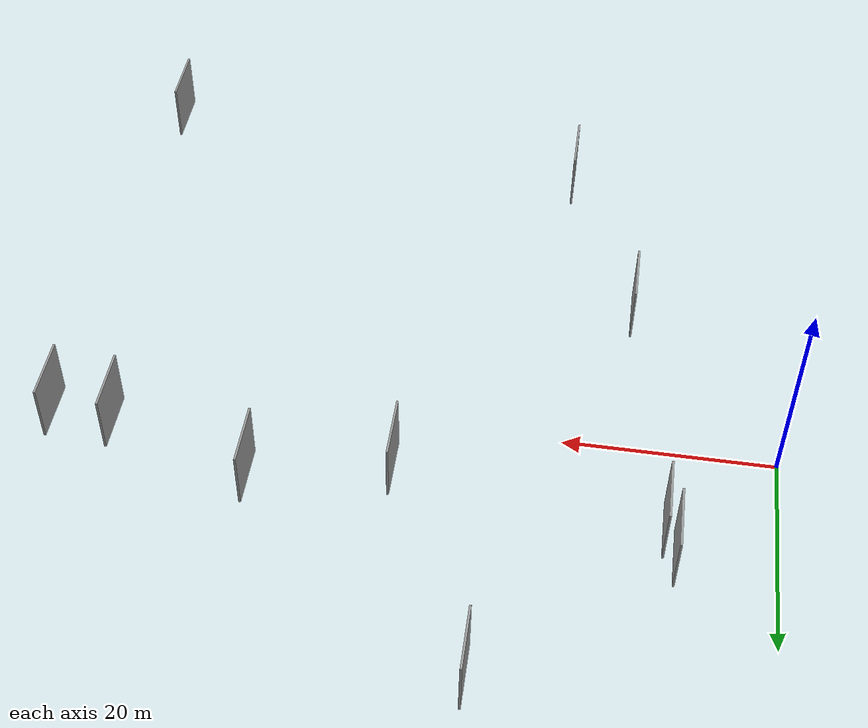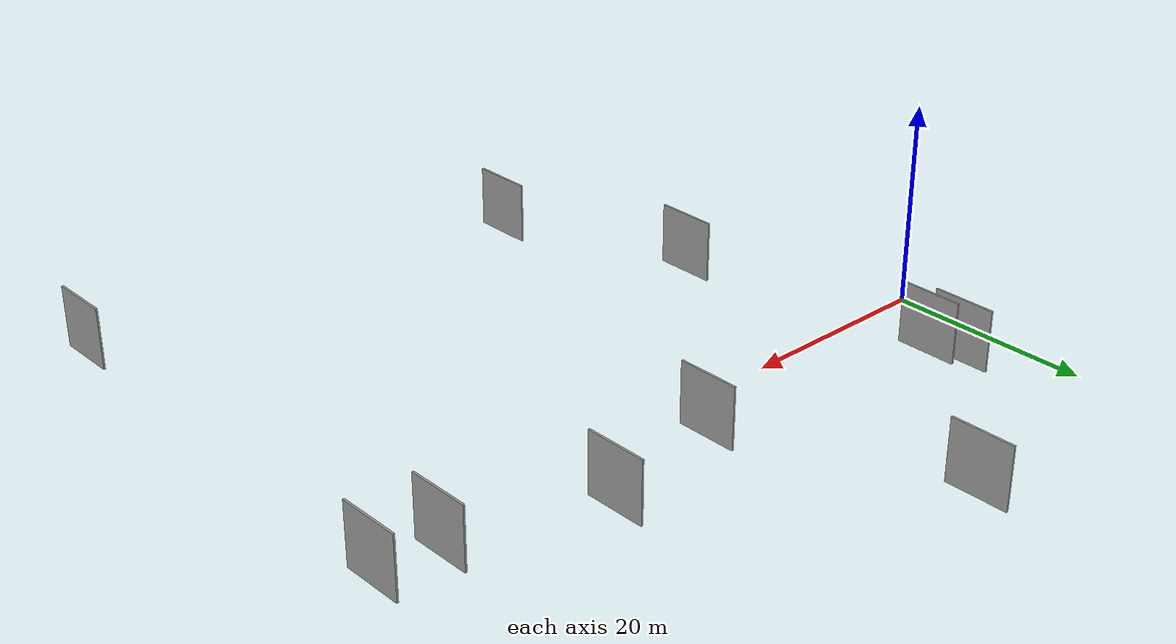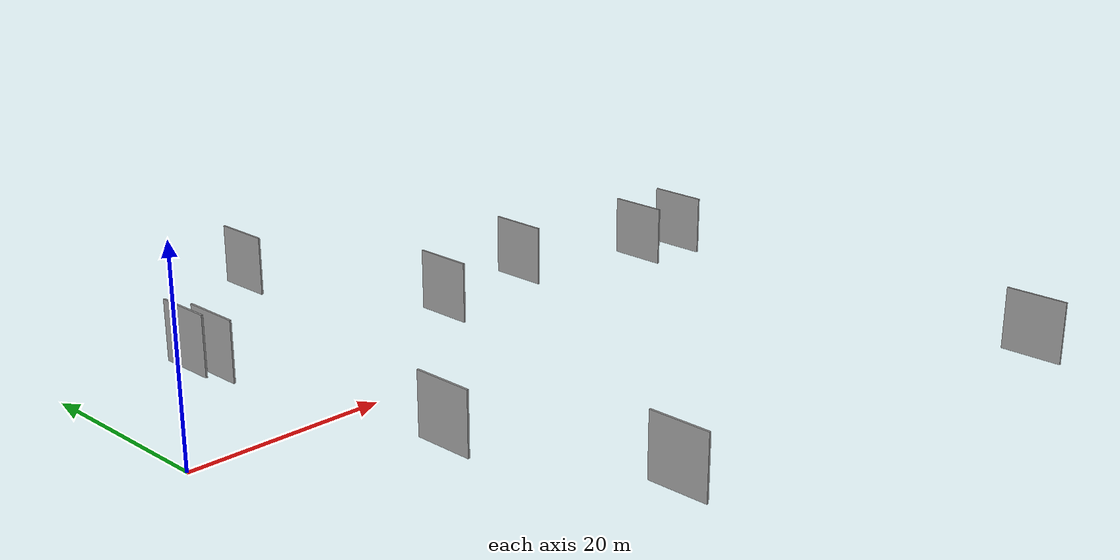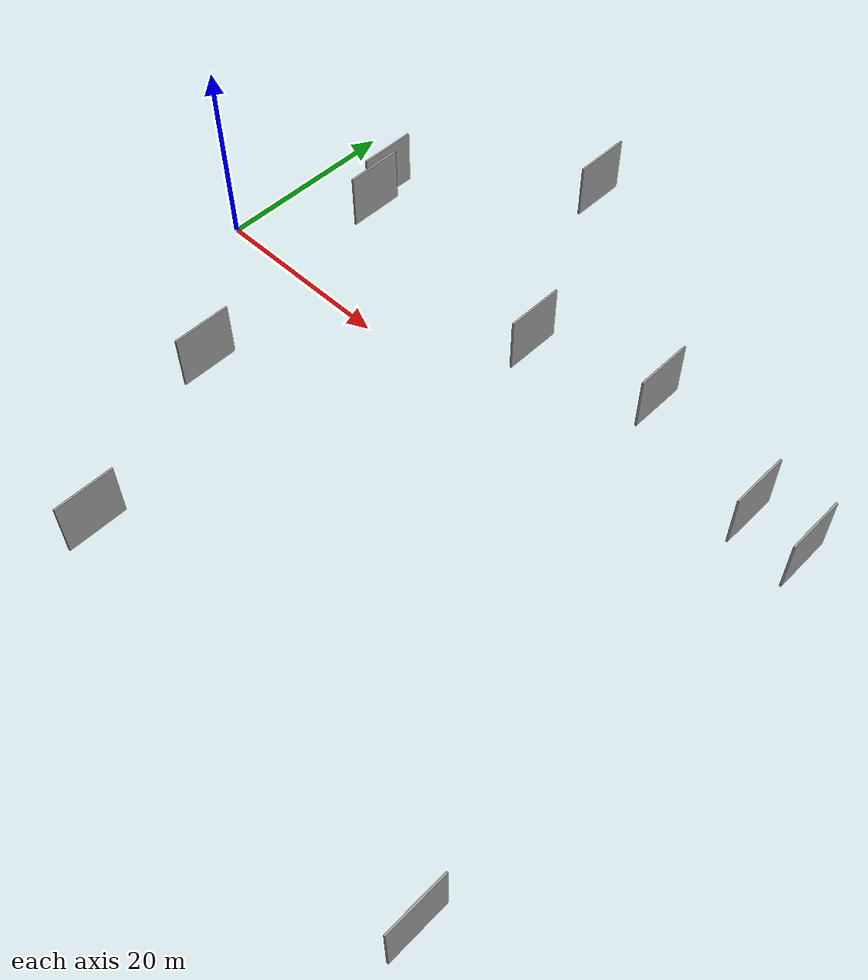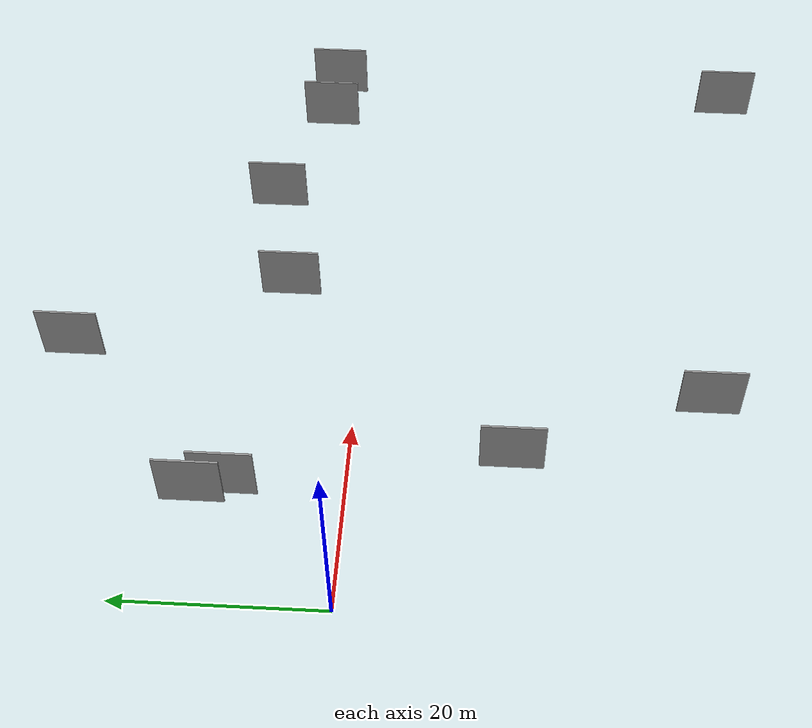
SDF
<sdf version="1.6">
 <world name="default">
  <scene>
   <sky><clouds><speed>12</speed></clouds></sky>
   <ambient>0.4 0.4 0.4 1</ambient>
   <background>0.7 0.7 0.7 1</background>
   <shadows>1</shadows>
  </scene>
  <gravity>0 0 -9.8066</gravity>
  <magnetic_field>6e-06 2.3e-05 -4.2e-05</magnetic_field>
  <physics default="0" name="default_physics" type="ode">
   <ode>
    <solver>
     <type>quick</type>
     <iters>10</iters>
     <sor>1.0</sor>
     <use_dynamic_moi_rescaling>0</use_dynamic_moi_rescaling>
    </solver>
    <constraints>
     <cfm>0</cfm>
     <erp>0.2</erp>
     <contact_max_correcting_vel>100</contact_max_correcting_vel>
     <contact_surface_layer>0.001</contact_surface_layer>
    </constraints>
   </ode>
   <max_step_size>0.004</max_step_size>
   <real_time_factor>1</real_time_factor>
   <real_time_update_rate>250</real_time_update_rate>
  </physics>
  <light name="sun" type="directional">
   <pose>0 0 10 0 0 0</pose>
   <diffuse>0.8 0.8 0.8 1</diffuse>
   <specular>0.2 0.2 0.2 1</specular>
   <attenuation>
    <range>1000</range>
    <constant>0.9</constant>
    <linear>0.01</linear>
    <quadratic>0.001</quadratic>
   </attenuation>
   <direction>-0.5 0.1 -0.9</direction>
  </light>
  <model name="grey_wall_1">
   <static>1</static>
   <pose>67.4245 5.3680 2.5 0.000000 0.000000 1.570796</pose>
   <link name="link">
    <pose>0 0 3.00 0 0 0</pose>
    <collision name="collision"><geometry><box><size>6.00 0.2 6.00</size></box></geometry></collision>
    <visual name="visual">
     <cast_shadows>0</cast_shadows>
     <geometry><box><size>6.00 0.2 6.00</size></box></geometry>
     <material>
      <script>
       <uri>model://grey_wall/materials/scripts</uri>
       <uri>model://grey_wall/materials/textures</uri>
       <name>vrc/grey_wall</name>
      </script>
     </material>
    </visual>
   </link>
  </model>
  <model name="grey_wall_2">
   <static>1</static>
   <pose>61.5008 5.8412 2.5 0.000000 0.000000 1.570796</pose>
   <link name="link">
    <pose>0 0 3.00 0 0 0</pose>
    <collision name="collision"><geometry><box><size>6.00 0.2 6.00</size></box></geometry></collision>
    <visual name="visual">
     <cast_shadows>0</cast_shadows>
     <geometry><box><size>6.00 0.2 6.00</size></box></geometry>
     <material>
      <script>
       <uri>model://grey_wall/materials/scripts</uri>
       <uri>model://grey_wall/materials/textures</uri>
       <name>vrc/grey_wall</name>
      </script>
     </material>
    </visual>
   </link>
  </model>
  <model name="grey_wall_3">
   <static>1</static>
   <pose>34.9234 7.4522 2.5 0.000000 0.000000 1.570796</pose>
   <link name="link">
    <pose>0 0 3.00 0 0 0</pose>
    <collision name="collision"><geometry><box><size>6.00 0.2 6.00</size></box></geometry></collision>
    <visual name="visual">
     <cast_shadows>0</cast_shadows>
     <geometry><box><size>6.00 0.2 6.00</size></box></geometry>
     <material>
      <script>
       <uri>model://grey_wall/materials/scripts</uri>
       <uri>model://grey_wall/materials/textures</uri>
       <name>vrc/grey_wall</name>
      </script>
     </material>
    </visual>
   </link>
  </model>
  <model name="grey_wall_4">
   <static>1</static>
   <pose>65.8171 -38.9891 2.5 0.000000 0.000000 1.570796</pose>
   <link name="link">
    <pose>0 0 3.00 0 0 0</pose>
    <collision name="collision"><geometry><box><size>6.00 0.2 6.00</size></box></geometry></collision>
    <visual name="visual">
     <cast_shadows>0</cast_shadows>
     <geometry><box><size>6.00 0.2 6.00</size></box></geometry>
     <material>
      <script>
       <uri>model://grey_wall/materials/scripts</uri>
       <uri>model://grey_wall/materials/textures</uri>
       <name>vrc/grey_wall</name>
      </script>
     </material>
    </visual>
   </link>
  </model>
  <model name="grey_wall_5">
   <static>1</static>
   <pose>21.8343 -33.9452 2.5 0.000000 0.000000 1.570796</pose>
   <link name="link">
    <pose>0 0 3.00 0 0 0</pose>
    <collision name="collision"><geometry><box><size>6.00 0.2 6.00</size></box></geometry></collision>
    <visual name="visual">
     <cast_shadows>0</cast_shadows>
     <geometry><box><size>6.00 0.2 6.00</size></box></geometry>
     <material>
      <script>
       <uri>model://grey_wall/materials/scripts</uri>
       <uri>model://grey_wall/materials/textures</uri>
       <name>vrc/grey_wall</name>
      </script>
     </material>
    </visual>
   </link>
  </model>
  <model name="grey_wall_6">
   <static>1</static>
   <pose>47.8414 10.2420 2.5 0.000000 0.000000 1.570796</pose>
   <link name="link">
    <pose>0 0 3.00 0 0 0</pose>
    <collision name="collision"><geometry><box><size>6.00 0.2 6.00</size></box></geometry></collision>
    <visual name="visual">
     <cast_shadows>0</cast_shadows>
     <geometry><box><size>6.00 0.2 6.00</size></box></geometry>
     <material>
      <script>
       <uri>model://grey_wall/materials/scripts</uri>
       <uri>model://grey_wall/materials/textures</uri>
       <name>vrc/grey_wall</name>
      </script>
     </material>
    </visual>
   </link>
  </model>
  <model name="grey_wall_7">
   <static>1</static>
   <pose>9.2550 13.5137 2.5 0.000000 0.000000 1.570796</pose>
   <link name="link">
    <pose>0 0 3.00 0 0 0</pose>
    <collision name="collision"><geometry><box><size>6.00 0.2 6.00</size></box></geometry></collision>
    <visual name="visual">
     <cast_shadows>0</cast_shadows>
     <geometry><box><size>6.00 0.2 6.00</size></box></geometry>
     <material>
      <script>
       <uri>model://grey_wall/materials/scripts</uri>
       <uri>model://grey_wall/materials/textures</uri>
       <name>vrc/grey_wall</name>
      </script>
     </material>
    </visual>
   </link>
  </model>
  <model name="grey_wall_8">
   <static>1</static>
   <pose>10.2617 10.6575 2.5 0.000000 0.000000 1.570796</pose>
   <link name="link">
    <pose>0 0 3.00 0 0 0</pose>
    <collision name="collision"><geometry><box><size>6.00 0.2 6.00</size></box></geometry></collision>
    <visual name="visual">
     <cast_shadows>0</cast_shadows>
     <geometry><box><size>6.00 0.2 6.00</size></box></geometry>
     <material>
      <script>
       <uri>model://grey_wall/materials/scripts</uri>
       <uri>model://grey_wall/materials/textures</uri>
       <name>vrc/grey_wall</name>
      </script>
     </material>
    </visual>
   </link>
  </model>
  <model name="grey_wall_9">
   <static>1</static>
   <pose>14.5091 -15.3287 2.5 0.000000 0.000000 1.570796</pose>
   <link name="link">
    <pose>0 0 3.00 0 0 0</pose>
    <collision name="collision"><geometry><box><size>6.00 0.2 6.00</size></box></geometry></collision>
    <visual name="visual">
     <cast_shadows>0</cast_shadows>
     <geometry><box><size>6.00 0.2 6.00</size></box></geometry>
     <material>
      <script>
       <uri>model://grey_wall/materials/scripts</uri>
       <uri>model://grey_wall/materials/textures</uri>
       <name>vrc/grey_wall</name>
      </script>
     </material>
    </visual>
   </link>
  </model>
  <model name="grey_wall_10">
   <static>1</static>
   <pose>25.7777 27.8934 2.5 0.000000 0.000000 1.570796</pose>
   <link name="link">
    <pose>0 0 3.00 0 0 0</pose>
    <collision name="collision"><geometry><box><size>6.00 0.2 6.00</size></box></geometry></collision>
    <visual name="visual">
     <cast_shadows>0</cast_shadows>
     <geometry><box><size>6.00 0.2 6.00</size></box></geometry>
     <material>
      <script>
       <uri>model://grey_wall/materials/scripts</uri>
       <uri>model://grey_wall/materials/textures</uri>
       <name>vrc/grey_wall</name>
      </script>
     </material>
    </visual>
   </link>
  </model>
 </world>
</sdf>
